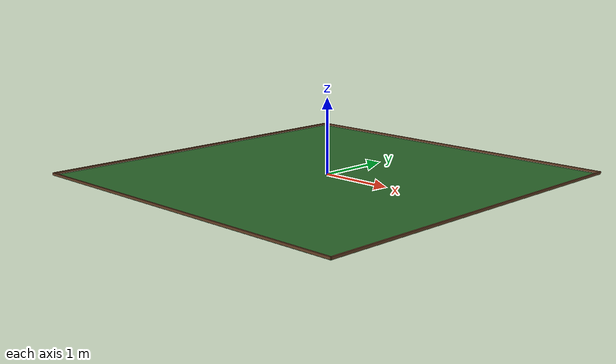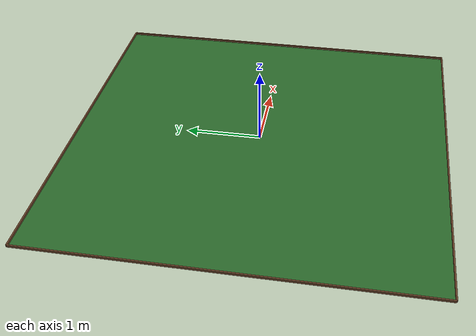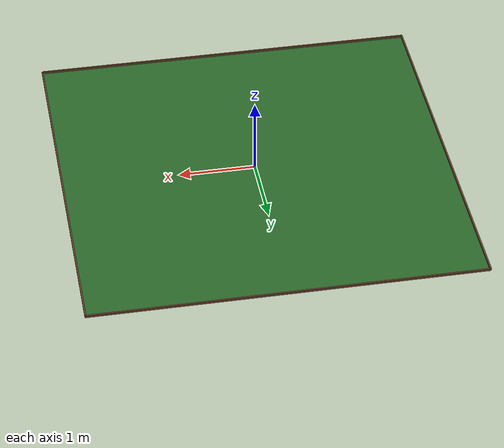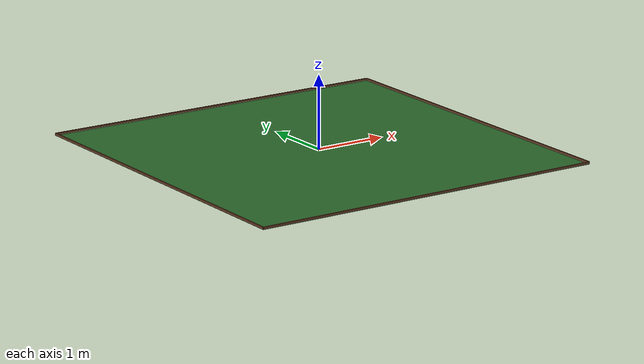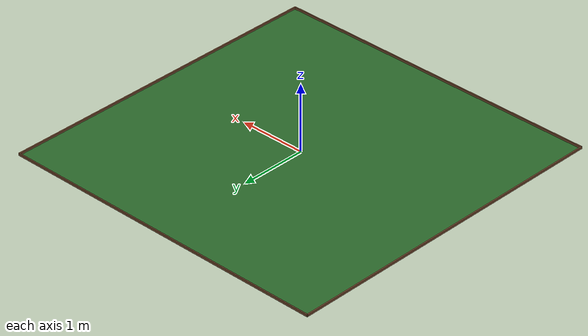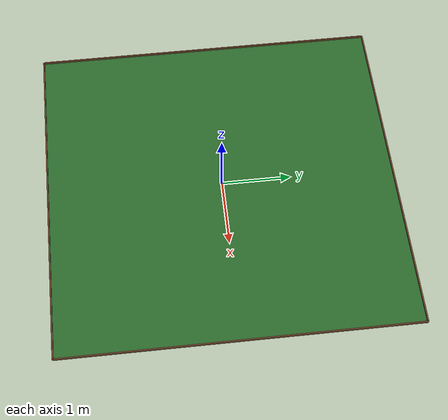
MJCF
<mujoco model="golf">
  <option timestep="0.001" gravity="0 0 -9.81"/>

  <visual>
    <global offwidth="1280" offheight="960"/>
    <headlight ambient=".3 .3 .3" diffuse=".5 .5 .5"/>
    <rgba fog="1 1 1 0"/>
    <map fogstart="10" fogend="20"/>
  </visual>

  <asset>
    <texture name="grid" type="2d" builtin="checker"
             rgb1=".15 .4 .15" rgb2=".2 .45 .2" width="512" height="512"/>
    <texture name="sky" type="skybox" builtin="gradient"
             rgb1=".6 .75 .9" rgb2=".3 .5 .7" width="512" height="512"/>
    <material name="green" texture="grid" texrepeat="4 4" reflectance="0.05"/>
  </asset>

  <worldbody>
    <light pos="0 0 4" dir="0 0 -1" diffuse=".8 .8 .8" specular=".2 .2 .2"/>
    <light pos="2 2 3" dir="-1 -1 -2" diffuse=".4 .4 .4"/>

    <geom name="ground" type="plane" size="2.5 2.5 0.01" material="green"
          contype="0" conaffinity="0"/>

    <geom name="wall_xp" type="box" pos=" 2.5 0 0.015" size="0.01 2.5 0.015" rgba=".4 .25 .15 1"/>
    <geom name="wall_xn" type="box" pos="-2.5 0 0.015" size="0.01 2.5 0.015" rgba=".4 .25 .15 1"/>
    <geom name="wall_yp" type="box" pos="0  2.5 0.015" size="2.5 0.01 0.015" rgba=".4 .25 .15 1"/>
    <geom name="wall_yn" type="box" pos="0 -2.5 0.015" size="2.5 0.01 0.015" rgba=".4 .25 .15 1"/>

    <body name="ball" pos="0 0 0.02135">
      <joint name="ball_x" type="slide" axis="1 0 0"/>
      <joint name="ball_y" type="slide" axis="0 1 0"/>
      <geom name="ball_geom" type="sphere" size="0.02135"
            mass="0.04593" rgba="1 1 1 1"
            condim="3" friction="0 0 0" solref="0.002 0.5"/>
    </body>
  </worldbody>
</mujoco>
